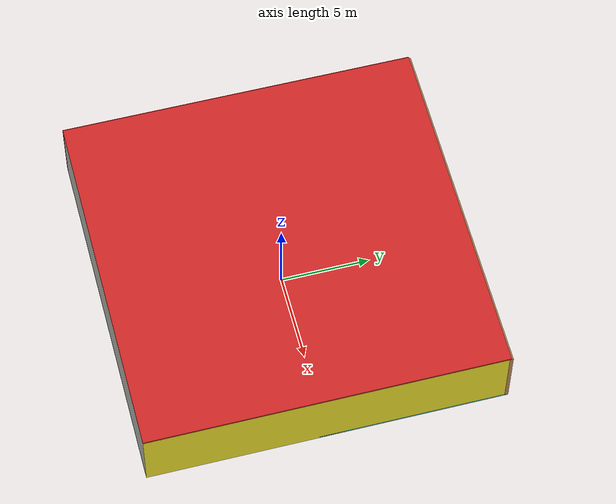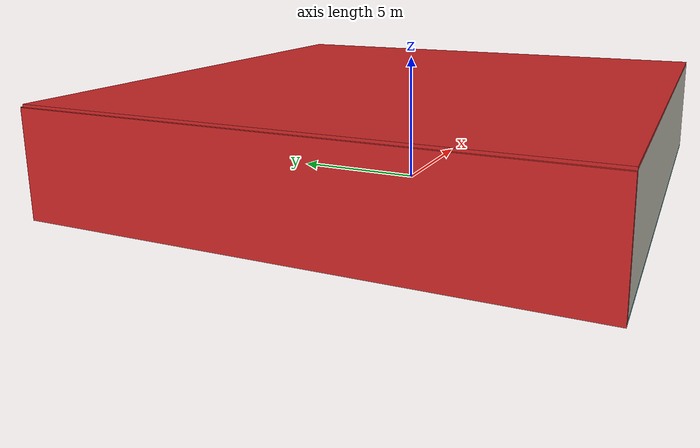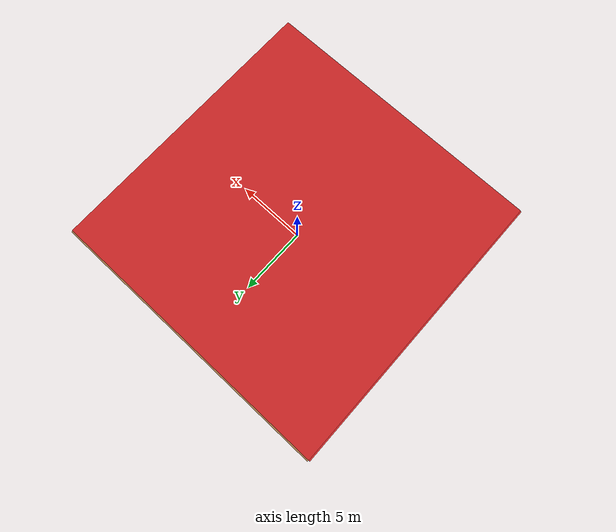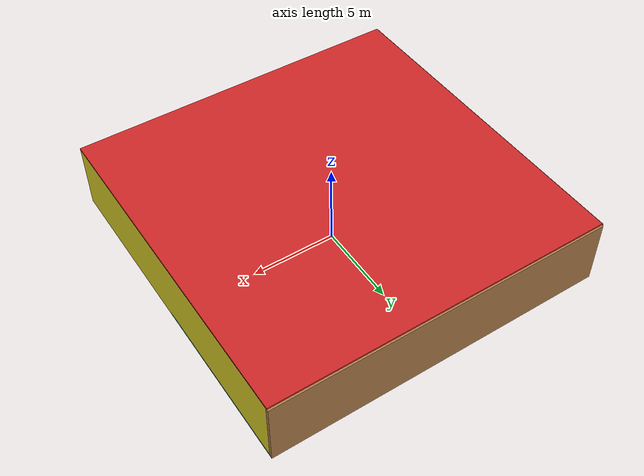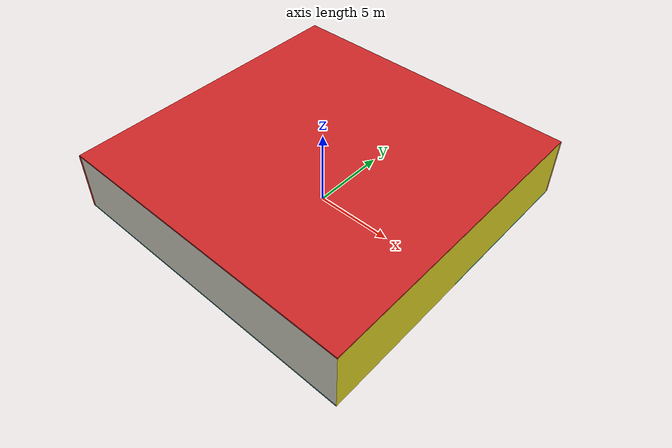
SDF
<sdf version="1.4">
 <world name="default">
  <physics type="ode">
   <max_step_size>0.001</max_step_size>
   <real_time_factor>1</real_time_factor>
   <real_time_update_rate>1000</real_time_update_rate>
   <gravity>0 0 -9.8</gravity>
  </physics>
  <scene><ambient>0.4 0.4 0.4 1</ambient><background>0.7 0.7 0.7 1</background><shadows>1</shadows></scene>
  <model name="Surrounding">
   <static>1</static>
   <link name="Ceiling">
    <collision name="Ceiling_Collision"><geometry><box><size>20 20 0.1</size></box></geometry></collision>
    <visual name="Ceiling_Visual">
     <geometry><box><size>20 20 0.1</size></box></geometry>
     <material>
      <script><uri>file://media/materials/scripts/gazebo.material</uri><name>Gazebo/RedGlow</name></script>
     </material>
    </visual>
    <pose>0 0 4.05 0 0 0</pose>
   </link>
   <link name="Wall_South">
    <collision name="Wall_South_Collision">
     <geometry><box><size>20 0 4</size></box></geometry>
     <pose>0 0 2 0 -0 0</pose>
    </collision>
    <visual name="Wall_South_Visual">
     <pose>0 0 2 0 -0 0</pose>
     <geometry><box><size>20 0 4</size></box></geometry>
     <material>
      <script><uri>file://media/materials/scripts/gazebo.material</uri><name>Gazebo/PaintedWall</name></script>
     </material>
    </visual>
    <velocity_decay><linear>0</linear><angular>0</angular></velocity_decay>
    <pose>0 -10 0 0 -0 0</pose>
   </link>
   <link name="Wall_East">
    <collision name="Wall_21_Collision">
     <geometry><box><size>20 0 4</size></box></geometry>
     <pose>0 0 2 0 -0 0</pose>
    </collision>
    <visual name="Wall_21_Visual">
     <pose>0 0 2 0 -0 0</pose>
     <geometry><box><size>20 0 4</size></box></geometry>
     <material>
      <script><uri>file://media/materials/scripts/gazebo.material</uri><name>Gazebo/Yellow</name></script>
     </material>
    </visual>
    <velocity_decay><linear>0</linear><angular>0</angular></velocity_decay>
    <pose>10 0 0 0 -0 1.5708</pose>
   </link>
   <link name="Wall_North">
    <collision name="Wall_22_Collision">
     <geometry><box><size>20 0.2 4</size></box></geometry>
     <pose>0 0 2 0 -0 0</pose>
    </collision>
    <visual name="Wall_22_Visual">
     <pose>0 0 2 0 -0 0</pose>
     <geometry><box><size>20 0.2 4</size></box></geometry>
     <material>
      <script><uri>file://media/materials/scripts/gazebo.material</uri><name>Gazebo/WoodFloor</name></script>
     </material>
    </visual>
    <velocity_decay><linear>0</linear><angular>0</angular></velocity_decay>
    <pose>0 10 0 0 -0 0</pose>
   </link>
   <link name="Wall_West">
    <collision name="Wall_23_Collision">
     <geometry><box><size>20 0.2 4</size></box></geometry>
     <pose>0 0 2 0 -0 0</pose>
    </collision>
    <visual name="Wall_23_Visual">
     <pose>0 0 2 0 -0 0</pose>
     <geometry><box><size>20 0.2 4</size></box></geometry>
     <material>
      <script><uri>file://media/materials/scripts/gazebo.material</uri><name>Gazebo/RedBright</name></script>
     </material>
    </visual>
    <velocity_decay><linear>0</linear><angular>0</angular></velocity_decay>
    <pose>-10 0 0 0 0 -1.5708</pose>
   </link>
   <link name="Ground_link">
    <collision name="collision">
     <pose>0 0 .05 0 -0 0</pose>
     <geometry><box><size>20 20 0.1</size></box></geometry>
    </collision>
    <visual name="visual">
     <pose>0 0 .05 0 -0 0</pose>
     <geometry><box><size>20 20 0.1</size></box></geometry>
     <material>
      <script><uri>file://media/materials/scripts/gazebo.material</uri><name>Gazebo/TurquoiseGlow</name></script>
     </material>
    </visual>
   </link>
   <static>1</static>
  </model>
  <spherical_coordinates>
   <surface_model>EARTH_WGS84</surface_model>
   <latitude_deg>0</latitude_deg>
   <longitude_deg>0</longitude_deg>
   <elevation>0</elevation>
   <heading_deg>0</heading_deg>
  </spherical_coordinates>
  <light name="lightball_0" type="diffuse">
   <diffuse>0.8 0.8 0.8 1</diffuse>
   <specular>0.2 0.2 0.2 1</specular>
   <attenuation>
    <range>100</range>
    <constant>0.7</constant>
    <linear>0.01</linear>
    <quadratic>0.001</quadratic>
   </attenuation>
   <direction>-0.5 0.1 -0.9</direction>
   <pose>1.24419347582 -1.08063981239 3.07687574123 0 0 0</pose>
  </light>
  <light name="lightball_1" type="diffuse">
   <diffuse>0.8 0.8 0.8 1</diffuse>
   <specular>0.2 0.2 0.2 1</specular>
   <attenuation>
    <range>100</range>
    <constant>0.7</constant>
    <linear>0.01</linear>
    <quadratic>0.001</quadratic>
   </attenuation>
   <direction>-0.5 0.1 -0.9</direction>
   <pose>5.50415196962 1.34802487658 2.9441002632 0 0 0</pose>
  </light>
  <light name="lightball_2" type="diffuse">
   <diffuse>0.8 0.8 0.8 1</diffuse>
   <specular>0.2 0.2 0.2 1</specular>
   <attenuation>
    <range>100</range>
    <constant>0.7</constant>
    <linear>0.01</linear>
    <quadratic>0.001</quadratic>
   </attenuation>
   <direction>-0.5 0.1 -0.9</direction>
   <pose>-9.40733648832 7.61686175414 0.7286829781 0 0 0</pose>
  </light>
  <light name="lightball_3" type="diffuse">
   <diffuse>0.8 0.8 0.8 1</diffuse>
   <specular>0.2 0.2 0.2 1</specular>
   <attenuation>
    <range>100</range>
    <constant>0.7</constant>
    <linear>0.01</linear>
    <quadratic>0.001</quadratic>
   </attenuation>
   <direction>-0.5 0.1 -0.9</direction>
   <pose>-5.74848958069 7.91596763904 1.84788617067 0 0 0</pose>
  </light>
  <light name="lightball_4" type="diffuse">
   <diffuse>0.8 0.8 0.8 1</diffuse>
   <specular>0.2 0.2 0.2 1</specular>
   <attenuation>
    <range>100</range>
    <constant>0.7</constant>
    <linear>0.01</linear>
    <quadratic>0.001</quadratic>
   </attenuation>
   <direction>-0.5 0.1 -0.9</direction>
   <pose>9.28700196806 0.450657284173 0.957552816126 0 0 0</pose>
  </light>
  <light name="lightball_5" type="diffuse">
   <diffuse>0.8 0.8 0.8 1</diffuse>
   <specular>0.2 0.2 0.2 1</specular>
   <attenuation>
    <range>100</range>
    <constant>0.7</constant>
    <linear>0.01</linear>
    <quadratic>0.001</quadratic>
   </attenuation>
   <direction>-0.5 0.1 -0.9</direction>
   <pose>2.32641588066 0.424123676238 2.56290771758 0 0 0</pose>
  </light>
  <light name="lightball_6" type="diffuse">
   <diffuse>0.8 0.8 0.8 1</diffuse>
   <specular>0.2 0.2 0.2 1</specular>
   <attenuation>
    <range>100</range>
    <constant>0.7</constant>
    <linear>0.01</linear>
    <quadratic>0.001</quadratic>
   </attenuation>
   <direction>-0.5 0.1 -0.9</direction>
   <pose>8.24388721357 3.3943418488 2.96016410604 0 0 0</pose>
  </light>
  <light name="lightball_7" type="diffuse">
   <diffuse>0.8 0.8 0.8 1</diffuse>
   <specular>0.2 0.2 0.2 1</specular>
   <attenuation>
    <range>100</range>
    <constant>0.7</constant>
    <linear>0.01</linear>
    <quadratic>0.001</quadratic>
   </attenuation>
   <direction>-0.5 0.1 -0.9</direction>
   <pose>5.98154417454 9.98116231678 1.37734555826 0 0 0</pose>
  </light>
  <light name="lightball_8" type="diffuse">
   <diffuse>0.8 0.8 0.8 1</diffuse>
   <specular>0.2 0.2 0.2 1</specular>
   <attenuation>
    <range>100</range>
    <constant>0.7</constant>
    <linear>0.01</linear>
    <quadratic>0.001</quadratic>
   </attenuation>
   <direction>-0.5 0.1 -0.9</direction>
   <pose>1.74945260922 2.79809267279 1.70618733304 0 0 0</pose>
  </light>
  <light name="lightball_9" type="diffuse">
   <diffuse>0.8 0.8 0.8 1</diffuse>
   <specular>0.2 0.2 0.2 1</specular>
   <attenuation>
    <range>100</range>
    <constant>0.7</constant>
    <linear>0.01</linear>
    <quadratic>0.001</quadratic>
   </attenuation>
   <direction>-0.5 0.1 -0.9</direction>
   <pose>-6.9151406442 0.994663309568 1.0985175101 0 0 0</pose>
  </light>
  <light name="lightball_10" type="diffuse">
   <diffuse>0.8 0.8 0.8 1</diffuse>
   <specular>0.2 0.2 0.2 1</specular>
   <attenuation>
    <range>100</range>
    <constant>0.7</constant>
    <linear>0.01</linear>
    <quadratic>0.001</quadratic>
   </attenuation>
   <direction>-0.5 0.1 -0.9</direction>
   <pose>2.13233227081 4.95584484117 0.850141792748 0 0 0</pose>
  </light>
  <include>
   <uri>model://construction_cone</uri>
   <pose>-6.80889358203 4.88995888691 0 0 0 0.112338044096</pose>
  </include>
  <include>
   <uri>model://robocup_3Dsim_goal</uri>
   <pose>1.64678965016 -3.70326608988 0 0 0 0.50134162079</pose>
  </include>
  <include>
   <uri>model://textured_shapes</uri>
   <pose>4.77280883997 3.80311233803 0 0 0 3.13285789054</pose>
  </include>
  <include>
   <uri>model://construction_cone</uri>
   <pose>7.1879329868 -7.50133530252 0 0 0 2.30423284129</pose>
  </include>
  <include>
   <uri>model://construction_cone</uri>
   <pose>7.04978899167 7.13163296727 0 0 0 2.88578930591</pose>
  </include>
 </world>
</sdf>

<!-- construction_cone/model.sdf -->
<sdf version="1.5">
  <model name="Construction Cone">
    <link name="link">
      <collision name="collision">
        <geometry>
          <mesh>
            <scale>10 10 10</scale>
            <uri>file://isr-testbed/construction_cone/meshes/construction_cone.dae</uri>
          </mesh>
        </geometry>
      </collision>
      <visual name="visual">
        <geometry>
          <mesh>
            <scale>10 10 10</scale>
            <uri>file://isr-testbed/construction_cone/meshes/construction_cone.dae</uri>
          </mesh>
        </geometry>
      </visual>
    </link>
  </model>
</sdf>

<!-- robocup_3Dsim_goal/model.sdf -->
<sdf version="1.5">
  <model name="robocup_3d_goal">
    <static>true</static>
    <link name="left_post">
      <pose>0 1.05 0.45 0 0 0</pose>
      <collision name="collision">
        <geometry>
          <cylinder>
            <radius>0.05</radius>
            <length>0.9</length>
          </cylinder>
        </geometry>
      </collision>
      <visual name="visual">
        <geometry>
          <cylinder>
            <radius>0.05</radius>
            <length>0.9</length>
          </cylinder>
        </geometry>
        <material>
          <script>
            <uri>file://media/materials/scripts/gazebo.material</uri>
            <name>Gazebo/ZincYellow</name>
          </script>
        </material>
      </visual>
    </link>
    <link name="left_support_horiz_lower">
      <pose>0.30 1.05 0.01 0 0 0</pose>
      <collision name="collision">
        <geometry>
          <box>
            <size>0.50 0.02 0.02</size>
          </box>
        </geometry>
      </collision>
      <visual name="visual">
        <geometry>
          <box>
            <size>0.50 0.02 0.02</size>
          </box>
        </geometry>
        <material>
          <script>
            <uri>file://media/materials/scripts/gazebo.material</uri>
            <name>Gazebo/White</name>
          </script>
        </material>
      </visual>
    </link>
    <link name="left_support_horiz_upper">
      <pose>0.30 1.05 0.79 0 0 0</pose>
      <collision name="collision">
        <geometry>
          <box>
            <size>0.50 0.02 0.02</size>
          </box>
        </geometry>
      </collision>
      <visual name="visual">
        <geometry>
          <box>
            <size>0.50 0.02 0.02</size>
          </box>
        </geometry>
        <material>
          <script>
            <uri>file://media/materials/scripts/gazebo.material</uri>
            <name>Gazebo/White</name>
          </script>
        </material>
      </visual>
    </link>
    <link name="left_support_vertical">
      <pose>0.56 1.05 0.4 0 1.5708 0</pose>
      <collision name="collision">
        <geometry>
          <box>
            <size>0.80 0.02 0.02</size>
          </box>
        </geometry>
      </collision>
      <visual name="visual">
        <geometry>
          <box>
            <size>0.80 0.02 0.02</size>
          </box>
        </geometry>
        <material>
          <script>
            <uri>file://media/materials/scripts/gazebo.material</uri>
            <name>Gazebo/White</name>
          </script>
        </material>
      </visual>
    </link>
    <link name="right_support_horiz_lower">
      <pose>0.30 -1.05 0.01 0 0 0</pose>
      <collision name="collision">
        <geometry>
          <box>
            <size>0.50 0.02 0.02</size>
          </box>
        </geometry>
      </collision>
      <visual name="visual">
        <geometry>
          <box>
            <size>0.50 0.02 0.02</size>
          </box>
        </geometry>
        <material>
          <script>
            <uri>file://media/materials/scripts/gazebo.material</uri>
            <name>Gazebo/White</name>
          </script>
        </material>
      </visual>
    </link>
    <link name="right_support_horiz_upper">
      <pose>0.30 -1.05 0.79 0 0 0</pose>
      <collision name="collision">
        <geometry>
          <box>
            <size>0.50 0.02 0.02</size>
          </box>
        </geometry>
      </collision>
      <visual name="visual">
        <geometry>
          <box>
            <size>0.50 0.02 0.02</size>
          </box>
        </geometry>
        <material>
          <script>
            <uri>file://media/materials/scripts/gazebo.material</uri>
            <name>Gazebo/White</name>
          </script>
        </material>
      </visual>
    </link>
    <link name="right_support_vertical">
      <pose>0.56 -1.05 0.4 0 1.5708 0</pose>
      <collision name="collision">
        <geometry>
          <box>
            <size>0.80 0.02 0.02</size>
          </box>
        </geometry>
      </collision>
      <visual name="visual">
        <geometry>
          <box>
            <size>0.80 0.02 0.02</size>
          </box>
        </geometry>
        <material>
          <script>
            <uri>file://media/materials/scripts/gazebo.material</uri>
            <name>Gazebo/White</name>
          </script>
        </material>
      </visual>
    </link>
    <link name="center_support_horiz_lower">
      <pose>0.56 0 0.01 0 1.5708 0</pose>
      <collision name="collision">
        <geometry>
          <box>
            <size>0.02 2.08 0.02</size>
          </box>
        </geometry>
      </collision>
      <visual name="visual">
        <geometry>
          <box>
            <size>0.02 2.08 0.02</size>
          </box>
        </geometry>
        <material>
          <script>
            <uri>file://media/materials/scripts/gazebo.material</uri>
            <name>Gazebo/White</name>
          </script>
        </material>
      </visual>
    </link>
    <link name="center_support_horiz_upper">
      <pose>0.56 0 0.79 0 1.5708 0</pose>
      <collision name="collision">
        <geometry>
          <box>
            <size>0.02 2.08 0.02</size>
          </box>
        </geometry>
      </collision>
      <visual name="visual">
        <geometry>
          <box>
            <size>0.02 2.08 0.02</size>
          </box>
        </geometry>
        <material>
          <script>
            <uri>file://media/materials/scripts/gazebo.material</uri>
            <name>Gazebo/White</name>
          </script>
        </material>
      </visual>
    </link>
    <link name="right_post">
      <pose>0 -1.05 0.45 0 0 0</pose>
      <collision name="collision">
        <geometry>
          <cylinder>
            <radius>0.05</radius>
            <length>0.9</length>
          </cylinder>
        </geometry>
      </collision>
      <visual name="visual">
        <geometry>
          <cylinder>
            <radius>0.05</radius>
            <length>0.9</length>
          </cylinder>
        </geometry>
        <material>
          <script>
            <uri>file://media/materials/scripts/gazebo.material</uri>
            <name>Gazebo/ZincYellow</name>
          </script>
        </material>
      </visual>
    </link>
    <link name="crossbar">
      <pose>0 0 0.85 1.57 1.57 0</pose>
      <collision name="collision">
        <geometry>
          <cylinder>
            <radius>0.05</radius>
            <length>2.0</length>
          </cylinder>
        </geometry>
      </collision>
      <visual name="visual">
        <geometry>
          <cylinder>
            <radius>0.05</radius>
            <length>2.0</length>
          </cylinder>
        </geometry>
        <material>
          <script>
            <uri>file://media/materials/scripts/gazebo.material</uri>
            <name>Gazebo/ZincYellow</name>
          </script>
        </material>
      </visual>
    </link>
    <link name="center_net">
      <pose>0.56 0 0.40 0 0 0</pose>
      <collision name="collision">
        <geometry>
          <box>
            <size>0.01 2.1 0.80</size>
          </box>
        </geometry>
      </collision>
      <visual name="visual">
        <geometry>
          <box>
            <size>0.01 2.1 0.80</size>
          </box>
        </geometry>
        <material>
          <script>
            <uri>model://../model_source/models/robocup09_spl_field/materials/scripts/</uri>
            <uri>model://../model_source/models/robocup09_spl_field/materials/textures/</uri>
            <name>RoboCup/Net</name>
          </script>
        </material>
      </visual>
    </link>
    <link name="left_net">
      <pose>0.30 1.05 0.40 0 0 0</pose>
      <collision name="collision">
        <geometry>
          <box>
            <size>0.50 0.01 0.76</size>
          </box>
        </geometry>
      </collision>
      <visual name="visual">
        <geometry>
          <box>
            <size>0.50 0.01 0.76</size>
          </box>
        </geometry>
        <material>
          <script>
            <uri>model://../model_source/models/robocup09_spl_field/materials/scripts/</uri>
            <uri>model://../model_source/models/robocup09_spl_field/materials/textures/</uri>
            <name>RoboCup/Net</name>
          </script>
        </material>
      </visual>
    </link>
    <link name="right_net">
      <pose>0.30 -1.05 0.40 0 0 0</pose>
      <collision name="collision">
        <geometry>
          <box>
            <size>0.50 0.01 0.76</size>
          </box>
        </geometry>
      </collision>
      <visual name="visual">
        <geometry>
          <box>
            <size>0.50 0.01 0.76</size>
          </box>
        </geometry>
        <material>
          <script>
            <uri>model://../model_source/models/robocup09_spl_field/materials/scripts/</uri>
            <uri>model://../model_source/models/robocup09_spl_field/materials/textures/</uri>
            <name>RoboCup/Net</name>
          </script>
        </material>
      </visual>
    </link>
  </model>
</sdf>

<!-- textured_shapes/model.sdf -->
<sdf version="1.6">
  <model name="textured_shapes">
    <pose>0 0 0.5 0 0 0</pose>
    <link name="box">
      <pose>0 -1.5 0 0 0 0</pose>
      <collision name="collision">
        <geometry>
          <box>
            <size>1 1 1</size>
          </box>
        </geometry>
      </collision>
      <visual name="visual">
        <geometry>
          <box>
            <size>1 1 1</size>
          </box>
        </geometry>
        <material>
          <script>
            <uri>model://../model_source/models/textured_shapes/materials/scripts</uri>
            <uri>model://../model_source/models/textured_shapes/materials/textures</uri>
            <name>TexturedShape/Squares</name>
          </script>
        </material>
      </visual>
    </link>
    <link name="sphere">
      <collision name="collision">
        <geometry>
          <sphere>
            <radius>0.5</radius>
          </sphere>
        </geometry>
      </collision>
      <visual name="visual">
        <geometry>
          <sphere>
            <radius>0.5</radius>
          </sphere>
        </geometry>
        <material>
          <script>
            <uri>model://../model_source/models/textured_shapes/materials/scripts</uri>
            <uri>model://../model_source/models/textured_shapes/materials/textures</uri>
            <name>TexturedShape/Squares</name>
          </script>
        </material>
      </visual>
    </link>
    <link name="cylinder">
      <pose>0 1.5 0 0 0 0</pose>
      <collision name="collision">
        <geometry>
          <cylinder>
            <radius>0.5</radius>
            <length>1</length>
          </cylinder>
        </geometry>
      </collision>
      <visual name="visual">
        <geometry>
          <cylinder>
            <radius>0.5</radius>
            <length>1</length>
          </cylinder>
        </geometry>
        <material>
          <script>
            <uri>model://../model_source/models/textured_shapes/materials/scripts</uri>
            <uri>model://../model_source/models/textured_shapes/materials/textures</uri>
            <name>TexturedShape/Squares</name>
          </script>
        </material>
      </visual>
    </link>
  </model>
</sdf>
